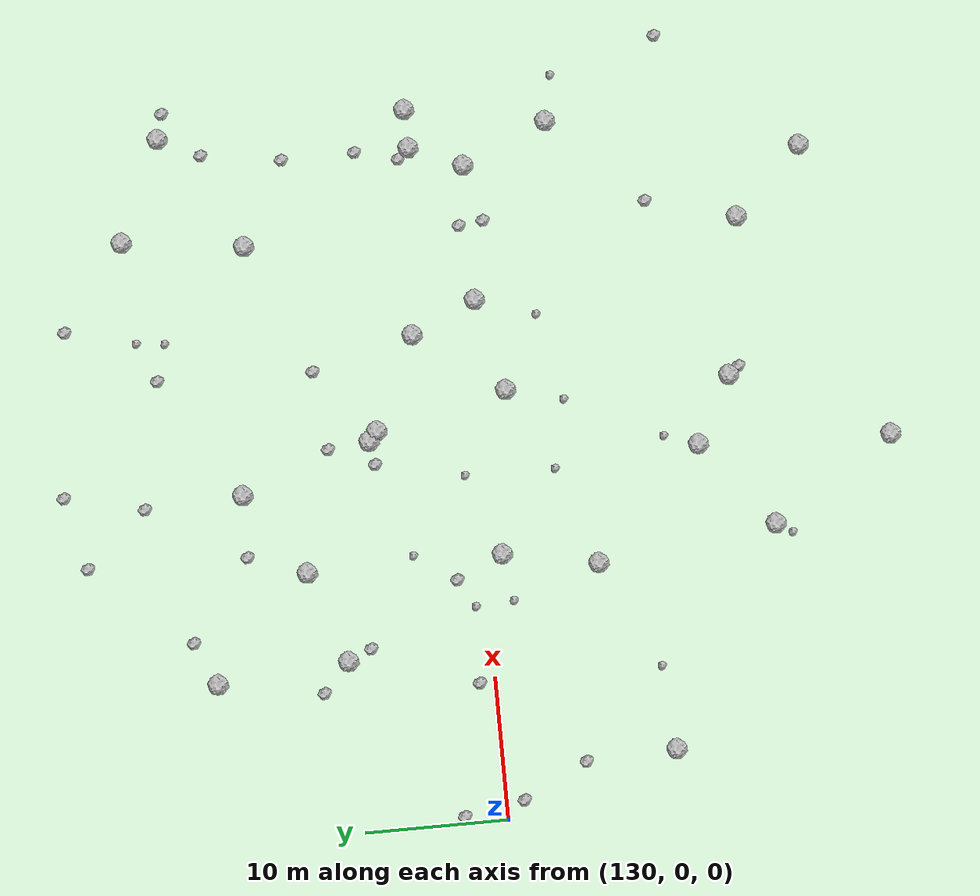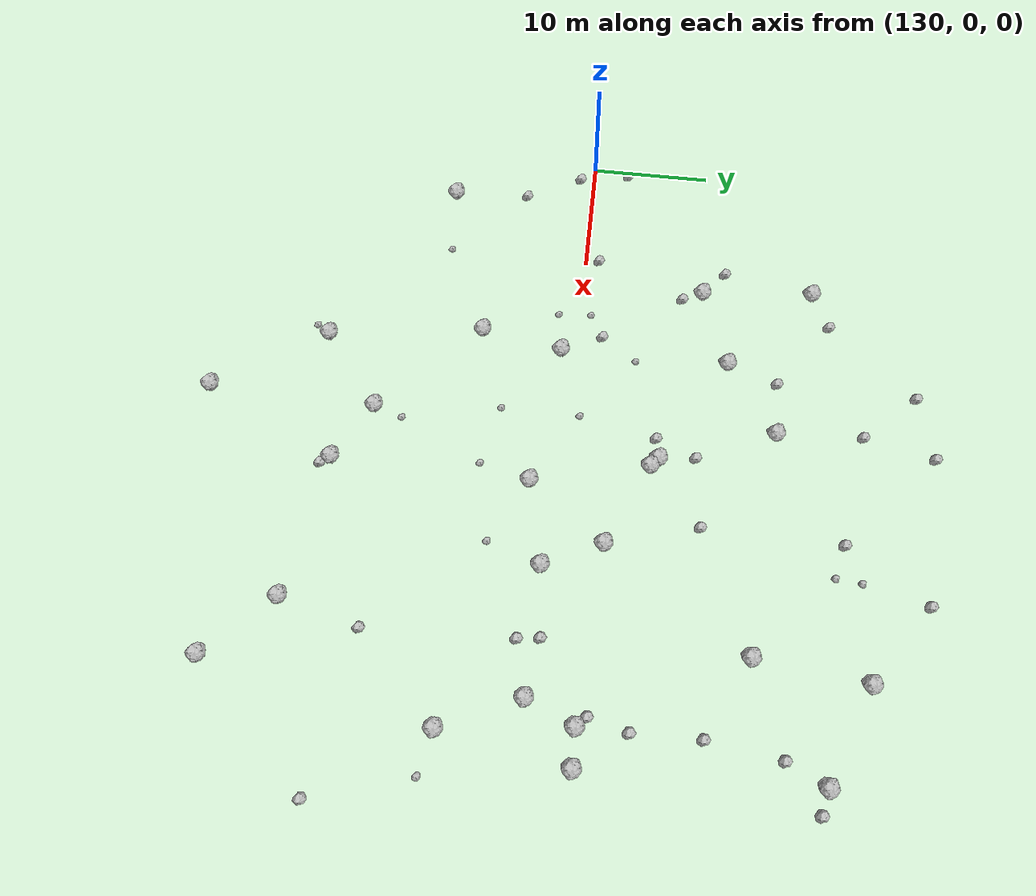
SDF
<sdf version="1.6">
 <world name="default">
  <include><uri>model://sun</uri></include>
  <model name="rock1_4_2">
   <include><uri>model://rock1</uri><pose>133.8657184248201 -12.183960605275448 0.5 0 0 0</pose></include>
  </model>
  <model name="rock1_4_3">
   <include><uri>model://rock1</uri><pose>175.73424804862464 -25.044121073343405 0.5 0 0 0</pose></include>
  </model>
  <model name="rock1_4_4">
   <include><uri>model://rock1</uri><pose>148.50834800176287 12.451637047328461 0.5 0 0 0</pose></include>
  </model>
  <model name="rock1_4_5">
   <include><uri>model://rock1</uri><pose>180.86235164952564 2.7124135934720215 0.5 0 0 0</pose></include>
  </model>
  <model name="rock1_4_6">
   <include><uri>model://rock1</uri><pose>158.05628464865103 6.697789684615536 0.5 0 0 0</pose></include>
  </model>
  <model name="rock1_4_7">
   <include><uri>model://rock1</uri><pose>148.57444743070417 -1.3171028618846385 0.5 0 0 0</pose></include>
  </model>
  <model name="rock1_4_8">
   <include><uri>model://rock1</uri><pose>159.74657212952434 -18.438144506242086 0.5 0 0 0</pose></include>
  </model>
  <model name="rock1_4_9">
   <include><uri>model://rock1</uri><pose>164.6492128262613 3.5901272747703743 0.5 0 0 0</pose></include>
  </model>
  <model name="rock1_4_10">
   <include><uri>model://rock1</uri><pose>178.08164345373606 2.665228341072009 0.5 0 0 0</pose></include>
  </model>
  <model name="rock1_4_11">
   <include><uri>model://rock1</uri><pose>142.05648254231144 10.111197132210073 0.5 0 0 0</pose></include>
  </model>
  <model name="rock1_4_12">
   <include><uri>model://rock1</uri><pose>141.2799051958386 19.35032871585433 0.5 0 0 0</pose></include>
  </model>
  <model name="rock1_4_13">
   <include><uri>model://rock1</uri><pose>155.0499782899385 -15.813697231994677 0.5 0 0 0</pose></include>
  </model>
  <model name="rock1_4_14">
   <include><uri>model://rock1</uri><pose>179.12846824262994 -7.215131308246249 0.5 0 0 0</pose></include>
  </model>
  <model name="rock1_4_15">
   <include><uri>model://rock1</uri><pose>154.37426149759534 16.49876544314037 0.5 0 0 0</pose></include>
  </model>
  <model name="rock1_4_16">
   <include><uri>model://rock1</uri><pose>166.76305243905227 -1.0307322700992287 0.5 0 0 0</pose></include>
  </model>
  <model name="rock1_4_17">
   <include><uri>model://rock1</uri><pose>147.34068185225743 -8.012403089810306 0.5 0 0 0</pose></include>
  </model>
  <model name="rock1_4_18">
   <include><uri>model://rock1</uri><pose>154.52494279708546 -29.403871019216105 0.5 0 0 0</pose></include>
  </model>
  <model name="rock1_4_19">
   <include><uri>model://rock1</uri><pose>180.34291865286838 20.40198343329643 0.5 0 0 0</pose></include>
  </model>
  <model name="rock1_4_20">
   <include><uri>model://rock1</uri><pose>176.45561045633826 -1.1098012462529319 0.5 0 0 0</pose></include>
  </model>
  <model name="rock1_4_21">
   <include><uri>model://rock1</uri><pose>172.07227669571404 14.918050255814649 0.5 0 0 0</pose></include>
  </model>
  <model name="rock1_4_22">
   <include><uri>model://rock1</uri><pose>173.11966034748636 23.55810796030149 0.5 0 0 0</pose></include>
  </model>
  <model name="rock1_4_23">
   <include><uri>model://rock1</uri><pose>148.95118189420782 -20.69697767007603 0.5 0 0 0</pose></include>
  </model>
  <model name="rock1_4_24">
   <include><uri>model://rock1</uri><pose>157.37832459884794 7.306270551393183 0.5 0 0 0</pose></include>
  </model>
  <model name="rock1_4_25">
   <include><uri>model://rock1</uri><pose>160.14928578609286 -2.6304774189825366 0.5 0 0 0</pose></include>
  </model>
  <model name="rock1_4_26">
   <include><uri>model://rock1</uri><pose>170.99972390224943 -20.123902110599232 0.5 0 0 0</pose></include>
  </model>
  <model name="rock2_4_0">
   <include><uri>model://rock2</uri><pose>139.68823268537443 1.0996875481744013 0.3 0 0 0</pose></include>
  </model>
  <model name="rock2_4_1">
   <include><uri>model://rock2</uri><pose>155.7033318992598 7.035067851231034 0.3 0 0 0</pose></include>
  </model>
  <model name="rock2_4_2">
   <include><uri>model://rock2</uri><pose>130.52136850749275 2.995290369712528 0.3 0 0 0</pose></include>
  </model>
  <model name="rock2_4_3">
   <include><uri>model://rock2</uri><pose>163.01109099171913 21.85473380614338 0.3 0 0 0</pose></include>
  </model>
  <model name="rock2_4_4">
   <include><uri>model://rock2</uri><pose>182.16635906786874 19.977846654527717 0.3 0 0 0</pose></include>
  </model>
  <model name="rock2_4_5">
   <include><uri>model://rock2</uri><pose>144.31077021483367 20.824825983527745 0.3 0 0 0</pose></include>
  </model>
  <model name="rock2_4_6">
   <include><uri>model://rock2</uri><pose>172.74370437790043 -13.754691862937491 0.3 0 0 0</pose></include>
  </model>
  <model name="rock2_4_7">
   <include><uri>model://rock2</uri><pose>178.12348417082927 6.522681742301096 0.3 0 0 0</pose></include>
  </model>
  <model name="rock2_4_8">
   <include><uri>model://rock2</uri><pose>184.60375440935093 -15.571733842914579 0.3 0 0 0</pose></include>
  </model>
  <model name="rock2_4_9">
   <include><uri>model://rock2</uri><pose>178.0514304330599 11.760391888416855 0.3 0 0 0</pose></include>
  </model>
  <model name="rock2_4_10">
   <include><uri>model://rock2</uri><pose>139.9692092199492 11.990329681810145 0.3 0 0 0</pose></include>
  </model>
  <model name="rock2_4_11">
   <include><uri>model://rock2</uri><pose>149.97705504437042 16.557755898222474 0.3 0 0 0</pose></include>
  </model>
  <model name="rock2_4_12">
   <include><uri>model://rock2</uri><pose>154.00901481950947 23.470263651914124 0.3 0 0 0</pose></include>
  </model>
  <model name="rock2_4_13">
   <include><uri>model://rock2</uri><pose>131.2851659210946 -1.2544384555104209 0.3 0 0 0</pose></include>
  </model>
  <model name="rock2_4_14">
   <include><uri>model://rock2</uri><pose>177.34206660326996 3.4574507541886845 0.3 0 0 0</pose></include>
  </model>
  <model name="rock2_4_15">
   <include><uri>model://rock2</uri><pose>150.1944771707553 27.801397336609014 0.3 0 0 0</pose></include>
  </model>
  <model name="rock2_4_16">
   <include><uri>model://rock2</uri><pose>167.08384922001906 28.121670863752136 0.3 0 0 0</pose></include>
  </model>
  <model name="rock2_4_17">
   <include><uri>model://rock2</uri><pose>160.32238753231687 -19.203951648084583 0.3 0 0 0</pose></include>
  </model>
  <model name="rock2_4_18">
   <include><uri>model://rock2</uri><pose>172.38759478351722 -2.1420582772164494 0.3 0 0 0</pose></include>
  </model>
  <model name="rock2_4_19">
   <include><uri>model://rock2</uri><pose>162.6844713604769 10.861395351941844 0.3 0 0 0</pose></include>
  </model>
  <model name="rock2_4_20">
   <include><uri>model://rock2</uri><pose>178.8965873932726 17.452759868445 0.3 0 0 0</pose></include>
  </model>
  <model name="rock2_4_21">
   <include><uri>model://rock2</uri><pose>147.05669877067785 2.0036380045150963 0.3 0 0 0</pose></include>
  </model>
  <model name="rock2_4_22">
   <include><uri>model://rock2</uri><pose>172.16798369508442 -0.42181105096072713 0.3 0 0 0</pose></include>
  </model>
  <model name="rock2_4_23">
   <include><uri>model://rock2</uri><pose>155.31696135747094 29.095964746841638 0.3 0 0 0</pose></include>
  </model>
  <model name="rock2_4_24">
   <include><uri>model://rock2</uri><pose>157.06750895002776 10.249575187978039 0.3 0 0 0</pose></include>
  </model>
  <model name="rock2_4_25">
   <include><uri>model://rock2</uri><pose>142.780094764503 8.467365307279458 0.3 0 0 0</pose></include>
  </model>
  <model name="rock2_4_26">
   <include><uri>model://rock2</uri><pose>133.56589531425232 -5.826022061996433 0.3 0 0 0</pose></include>
  </model>
  <model name="rock3_4_0">
   <include><uri>model://rock3</uri><pose>165.62190663487004 21.095866208286964 0.2 0 0 0</pose></include>
  </model>
  <model name="rock3_4_1">
   <include><uri>model://rock3</uri><pose>145.22353867001345 -1.8557450932813282 0.2 0 0 0</pose></include>
  </model>
  <model name="rock3_4_2">
   <include><uri>model://rock3</uri><pose>165.81639850735385 23.098946343642787 0.2 0 0 0</pose></include>
  </model>
  <model name="rock3_4_3">
   <include><uri>model://rock3</uri><pose>149.0075749097075 4.907055192214052 0.2 0 0 0</pose></include>
  </model>
  <model name="rock3_4_4">
   <include><uri>model://rock3</uri><pose>154.33369278307973 0.7651971337251524 0.2 0 0 0</pose></include>
  </model>
  <model name="rock3_4_5">
   <include><uri>model://rock3</uri><pose>154.23999642644077 -5.615169271883911 0.2 0 0 0</pose></include>
  </model>
  <model name="rock3_4_6">
   <include><uri>model://rock3</uri><pose>155.8418117994695 -13.474282462821236 0.2 0 0 0</pose></include>
  </model>
  <model name="rock3_4_7">
   <include><uri>model://rock3</uri><pose>165.32459910397642 -5.311575762608232 0.2 0 0 0</pose></include>
  </model>
  <model name="rock3_4_8">
   <include><uri>model://rock3</uri><pose>182.41245732792646 -7.927180284557188 0.2 0 0 0</pose></include>
  </model>
  <model name="rock3_4_9">
   <include><uri>model://rock3</uri><pose>145.03681211612104 0.839662710122365 0.2 0 0 0</pose></include>
  </model>
  <model name="rock3_4_10">
   <include><uri>model://rock3</uri><pose>139.69495579986852 -11.757241474065495 0.2 0 0 0</pose></include>
  </model>
  <model name="rock3_4_11">
   <include><uri>model://rock3</uri><pose>159.09926130611638 -6.686475455903079 0.2 0 0 0</pose></include>
  </model>
  <model name="rock3_4_12">
   <include><uri>model://rock3</uri><pose>148.21969355693557 -21.874978903230975 0.2 0 0 0</pose></include>
  </model>
 </world>
</sdf>
